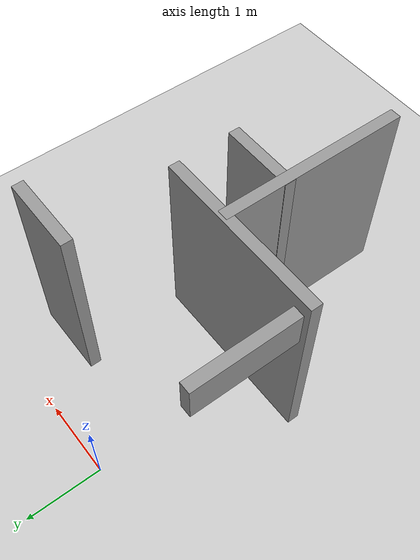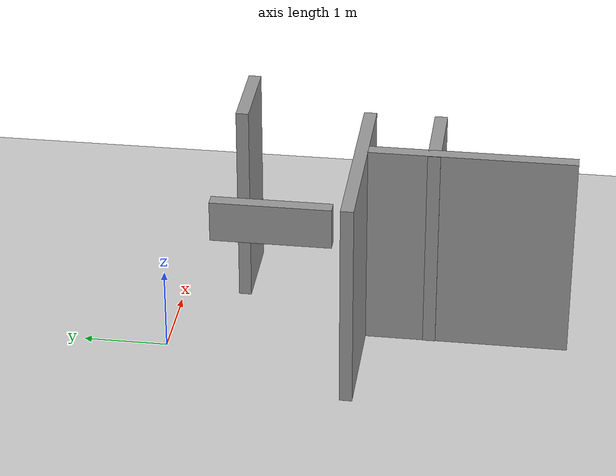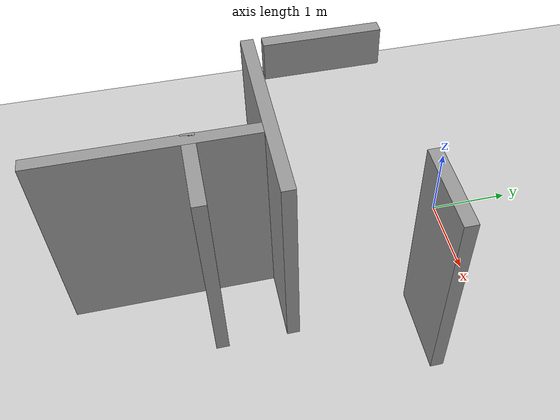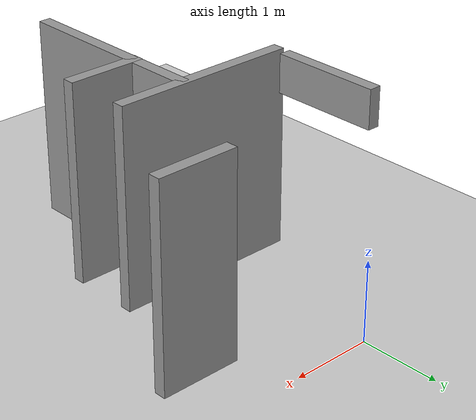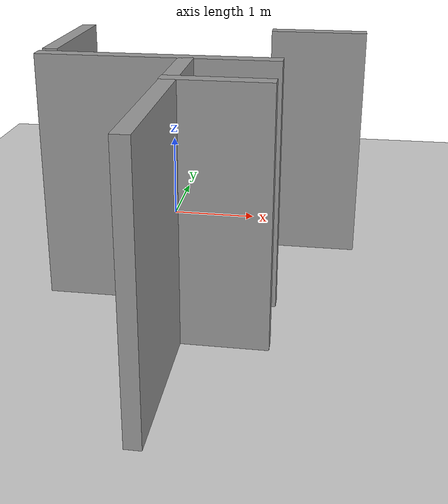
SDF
<sdf version="1.6">
 <world name="default">
  <model name="demo_clean">
   <static>1</static>
   <link name="Wall_19">
    <collision name="Wall_19_Collision">
     <geometry><box><size>2.34163 0.15 2.5</size></box></geometry>
     <pose>0 0 1.25 0 -0 0</pose>
     <surface>
      <friction>
       <ode><mu>1.0</mu><mu2>1.0</mu2><fdir1>0 0 0</fdir1><slip1>0.0</slip1><slip2>0.0</slip2></ode>
       <torsional>
        <coefficient>1.0</coefficient>
        <patch_radius>0.0</patch_radius>
        <surface_radius>0.0</surface_radius>
        <use_patch_radius>1</use_patch_radius>
        <ode><slip>0.0</slip></ode>
       </torsional>
      </friction>
      <bounce><restitution_coefficient>0.0</restitution_coefficient><threshold>1000000.0</threshold></bounce>
      <contact>
       <collide_without_contact>0</collide_without_contact>
       <collide_without_contact_bitmask>1</collide_without_contact_bitmask>
       <collide_bitmask>1</collide_bitmask>
       <ode>
        <soft_cfm>0.0</soft_cfm>
        <soft_erp>0.2</soft_erp>
        <kp>10000000000000.0</kp>
        <kd>1.0</kd>
        <max_vel>0.01</max_vel>
        <min_depth>0.0</min_depth>
       </ode>
       <bullet>
        <split_impulse>1</split_impulse>
        <split_impulse_penetration_threshold>-0.01</split_impulse_penetration_threshold>
        <soft_cfm>0.0</soft_cfm>
        <soft_erp>0.2</soft_erp>
        <kp>10000000000000.0</kp>
        <kd>1.0</kd>
       </bullet>
      </contact>
     </surface>
    </collision>
    <visual name="Wall_19_Visual">
     <geometry><box><size>2.34163 0.15 2.5</size></box></geometry>
     <material>
      <script><name>Gazebo/Grey</name><uri>file://media/materials/scripts/gazebo.material</uri></script>
      <ambient>1 1 1 1</ambient>
      <shader type="pixel"><normal_map>default</normal_map></shader>
     </material>
     <pose>0 0 1.25 0 -0 0</pose>
     <transparency>0.0</transparency>
    </visual>
    <inertial>
     <inertia><ixx>0.0</ixx><iyy>0.0</iyy><izz>0.0</izz><ixy>0.0</ixy><ixz>0.0</ixz><iyz>0.0</iyz></inertia>
     <mass>1.0</mass>
    </inertial>
    <pose>0.295923 -2.24288 0 0 -0 0</pose>
   </link>
   <link name="Wall_21">
    <collision name="Wall_21_Collision">
     <geometry><box><size>2.5 0.15 2.5</size></box></geometry>
     <pose>0 0 1.25 0 -0 0</pose>
     <surface>
      <friction>
       <ode><mu>1.0</mu><mu2>1.0</mu2><fdir1>0 0 0</fdir1><slip1>0.0</slip1><slip2>0.0</slip2></ode>
       <torsional>
        <coefficient>1.0</coefficient>
        <patch_radius>0.0</patch_radius>
        <surface_radius>0.0</surface_radius>
        <use_patch_radius>1</use_patch_radius>
        <ode><slip>0.0</slip></ode>
       </torsional>
      </friction>
      <bounce><restitution_coefficient>0.0</restitution_coefficient><threshold>1000000.0</threshold></bounce>
      <contact>
       <collide_without_contact>0</collide_without_contact>
       <collide_without_contact_bitmask>1</collide_without_contact_bitmask>
       <collide_bitmask>1</collide_bitmask>
       <ode>
        <soft_cfm>0.0</soft_cfm>
        <soft_erp>0.2</soft_erp>
        <kp>10000000000000.0</kp>
        <kd>1.0</kd>
        <max_vel>0.01</max_vel>
        <min_depth>0.0</min_depth>
       </ode>
       <bullet>
        <split_impulse>1</split_impulse>
        <split_impulse_penetration_threshold>-0.01</split_impulse_penetration_threshold>
        <soft_cfm>0.0</soft_cfm>
        <soft_erp>0.2</soft_erp>
        <kp>10000000000000.0</kp>
        <kd>1.0</kd>
       </bullet>
      </contact>
     </surface>
    </collision>
    <visual name="Wall_21_Visual">
     <geometry><box><size>2.5 0.15 2.5</size></box></geometry>
     <material>
      <script><name>Gazebo/Grey</name><uri>file://media/materials/scripts/gazebo.material</uri></script>
      <ambient>1 1 1 1</ambient>
      <shader type="pixel"><normal_map>default</normal_map></shader>
     </material>
     <pose>0 0 1.25 0 -0 0</pose>
     <transparency>0.0</transparency>
    </visual>
    <pose>0.573753 -3.46553 0 0 0 -1.5708</pose>
   </link>
   <link name="Wall_23">
    <collision name="Wall_23_Collision">
     <geometry><box><size>0.981708 0.15 2.5</size></box></geometry>
     <pose>0 0 1.25 0 -0 0</pose>
     <surface>
      <friction>
       <ode><mu>1.0</mu><mu2>1.0</mu2><fdir1>0 0 0</fdir1><slip1>0.0</slip1><slip2>0.0</slip2></ode>
       <torsional>
        <coefficient>1.0</coefficient>
        <patch_radius>0.0</patch_radius>
        <surface_radius>0.0</surface_radius>
        <use_patch_radius>1</use_patch_radius>
        <ode><slip>0.0</slip></ode>
       </torsional>
      </friction>
      <bounce><restitution_coefficient>0.0</restitution_coefficient><threshold>1000000.0</threshold></bounce>
      <contact>
       <collide_without_contact>0</collide_without_contact>
       <collide_without_contact_bitmask>1</collide_without_contact_bitmask>
       <collide_bitmask>1</collide_bitmask>
       <ode>
        <soft_cfm>0.0</soft_cfm>
        <soft_erp>0.2</soft_erp>
        <kp>10000000000000.0</kp>
        <kd>1.0</kd>
        <max_vel>0.01</max_vel>
        <min_depth>0.0</min_depth>
       </ode>
       <bullet>
        <split_impulse>1</split_impulse>
        <split_impulse_penetration_threshold>-0.01</split_impulse_penetration_threshold>
        <soft_cfm>0.0</soft_cfm>
        <soft_erp>0.2</soft_erp>
        <kp>10000000000000.0</kp>
        <kd>1.0</kd>
       </bullet>
      </contact>
     </surface>
    </collision>
    <visual name="Wall_23_Visual">
     <geometry><box><size>0.981708 0.15 2.5</size></box></geometry>
     <material>
      <script><name>Gazebo/Grey</name><uri>file://media/materials/scripts/gazebo.material</uri></script>
      <ambient>1 1 1 1</ambient>
      <shader type="pixel"><normal_map>default</normal_map></shader>
     </material>
     <pose>0 0 1.25 0 -0 0</pose>
     <transparency>0.0</transparency>
    </visual>
    <inertial>
     <inertia><ixx>0.0</ixx><iyy>0.0</iyy><izz>0.0</izz><ixy>0.0</ixy><ixz>0.0</ixz><iyz>0.0</iyz></inertia>
     <mass>1.0</mass>
    </inertial>
    <pose>0.983425 -3.07697 0 0 -0 0</pose>
   </link>
   <link name="Wall_28">
    <collision name="Wall_28_Collision">
     <geometry><box><size>1 0.15 2.5</size></box></geometry>
     <pose>0 0 1.25 0 -0 0</pose>
     <surface>
      <friction>
       <ode><mu>1.0</mu><mu2>1.0</mu2><fdir1>0 0 0</fdir1><slip1>0.0</slip1><slip2>0.0</slip2></ode>
       <torsional>
        <coefficient>1.0</coefficient>
        <patch_radius>0.0</patch_radius>
        <surface_radius>0.0</surface_radius>
        <use_patch_radius>1</use_patch_radius>
        <ode><slip>0.0</slip></ode>
       </torsional>
      </friction>
      <bounce><restitution_coefficient>0.0</restitution_coefficient><threshold>1000000.0</threshold></bounce>
      <contact>
       <collide_without_contact>0</collide_without_contact>
       <collide_without_contact_bitmask>1</collide_without_contact_bitmask>
       <collide_bitmask>1</collide_bitmask>
       <ode>
        <soft_cfm>0.0</soft_cfm>
        <soft_erp>0.2</soft_erp>
        <kp>10000000000000.0</kp>
        <kd>1.0</kd>
        <max_vel>0.01</max_vel>
        <min_depth>0.0</min_depth>
       </ode>
       <bullet>
        <split_impulse>1</split_impulse>
        <split_impulse_penetration_threshold>-0.01</split_impulse_penetration_threshold>
        <soft_cfm>0.0</soft_cfm>
        <soft_erp>0.2</soft_erp>
        <kp>10000000000000.0</kp>
        <kd>1.0</kd>
       </bullet>
      </contact>
     </surface>
    </collision>
    <visual name="Wall_28_Visual">
     <geometry><box><size>1 0.15 2.5</size></box></geometry>
     <material>
      <script><name>Gazebo/Grey</name><uri>file://media/materials/scripts/gazebo.material</uri></script>
      <ambient>1 1 1 1</ambient>
      <shader type="pixel"><normal_map>default</normal_map></shader>
     </material>
     <pose>0 0 1.25 0 -0 0</pose>
     <transparency>0.0</transparency>
    </visual>
    <pose>1.74215 -0.745235 0 0 -0 0</pose>
   </link>
   <link name="Wall_28_clone_clone_clone">
    <gravity>0</gravity>
    <collision name="Wall_28_Collision">
     <geometry><box><size>1.35894 0.15 0.476648</size></box></geometry>
     <pose>0 0 1.25 0 -0 0</pose>
     <surface>
      <friction>
       <ode><mu>1.0</mu><mu2>1.0</mu2><fdir1>0 0 0</fdir1><slip1>0.0</slip1><slip2>0.0</slip2></ode>
       <torsional>
        <coefficient>1.0</coefficient>
        <patch_radius>0.0</patch_radius>
        <surface_radius>0.0</surface_radius>
        <use_patch_radius>1</use_patch_radius>
        <ode><slip>0.0</slip></ode>
       </torsional>
      </friction>
      <bounce><restitution_coefficient>0.0</restitution_coefficient><threshold>1000000.0</threshold></bounce>
      <contact>
       <collide_without_contact>0</collide_without_contact>
       <collide_without_contact_bitmask>1</collide_without_contact_bitmask>
       <collide_bitmask>1</collide_bitmask>
       <ode>
        <soft_cfm>0.0</soft_cfm>
        <soft_erp>0.2</soft_erp>
        <kp>10000000000000.0</kp>
        <kd>1.0</kd>
        <max_vel>0.01</max_vel>
        <min_depth>0.0</min_depth>
       </ode>
       <bullet>
        <split_impulse>1</split_impulse>
        <split_impulse_penetration_threshold>-0.01</split_impulse_penetration_threshold>
        <soft_cfm>0.0</soft_cfm>
        <soft_erp>0.2</soft_erp>
        <kp>10000000000000.0</kp>
        <kd>1.0</kd>
       </bullet>
      </contact>
     </surface>
    </collision>
    <visual name="Wall_28_Visual">
     <geometry><box><size>1.35894 0.15 0.476648</size></box></geometry>
     <material>
      <script><name>Gazebo/Grey</name><uri>file://media/materials/scripts/gazebo.material</uri></script>
      <ambient>1 1 1 1</ambient>
      <shader type="pixel"><normal_map>__default__</normal_map></shader>
     </material>
     <pose>0 0 1.25 0 -0 0</pose>
     <transparency>0.0</transparency>
    </visual>
    <inertial>
     <inertia><ixx>0.0</ixx><iyy>0.0</iyy><izz>0.0</izz><ixy>0.0</ixy><ixz>0.0</ixz><iyz>0.0</iyz></inertia>
     <mass>1.0</mass>
    </inertial>
    <pose>-0.802228 -1.39589 1.01168 0 0 -1.57004</pose>
   </link>
  </model>
  <include><uri>model://ground_plane</uri><name>ground_plane</name><static>1</static></include>
 </world>
</sdf>
